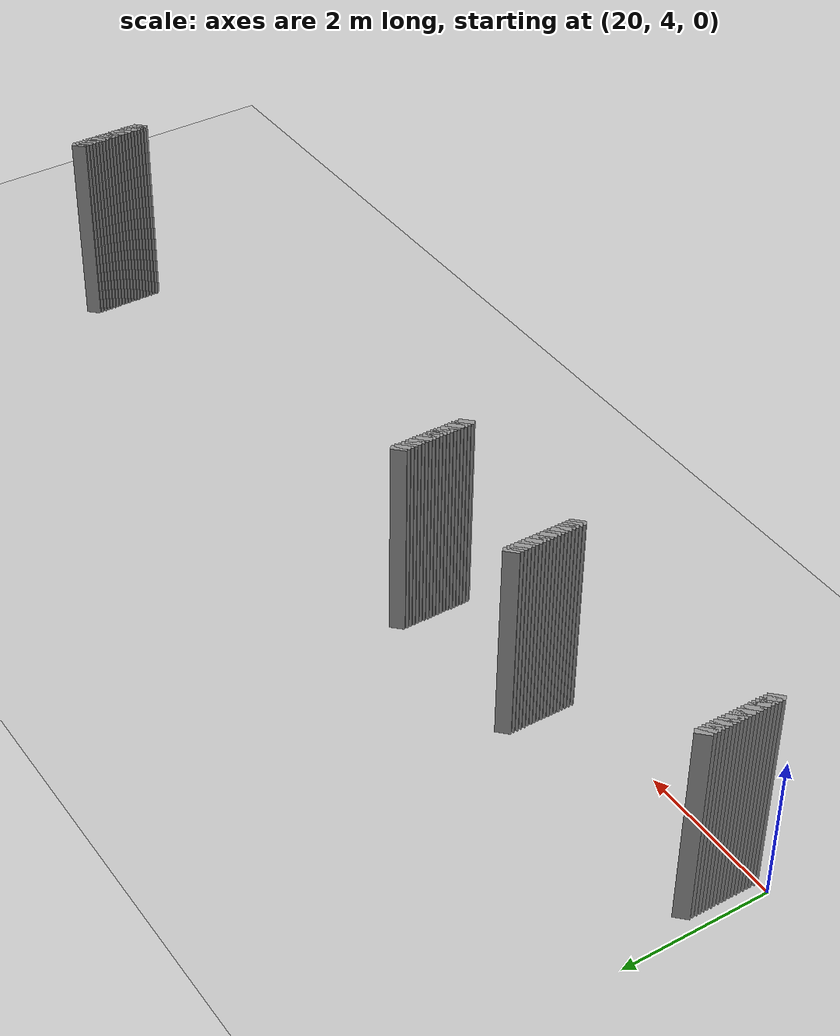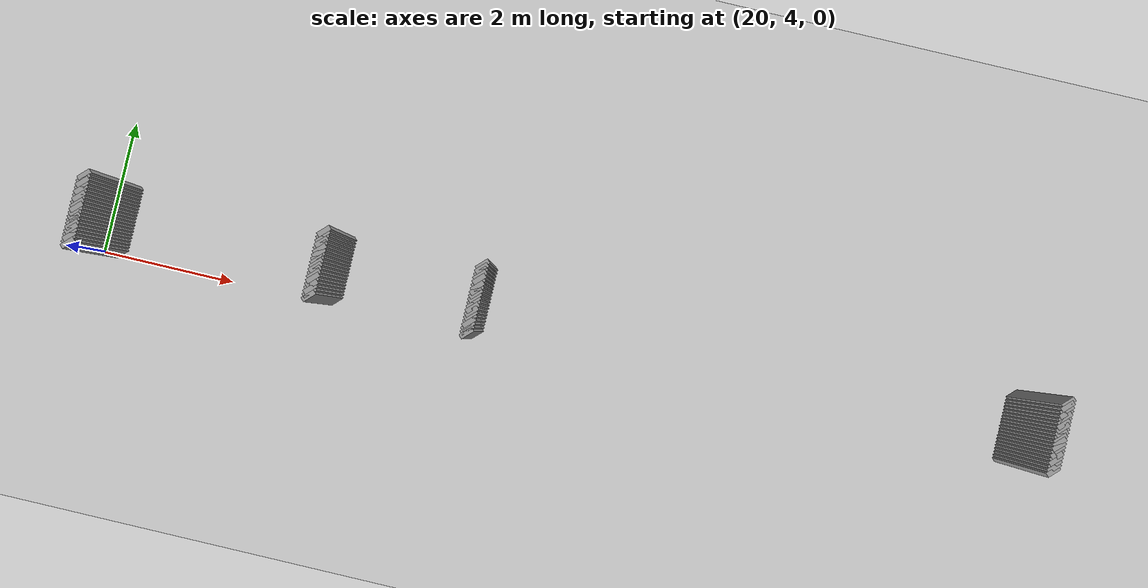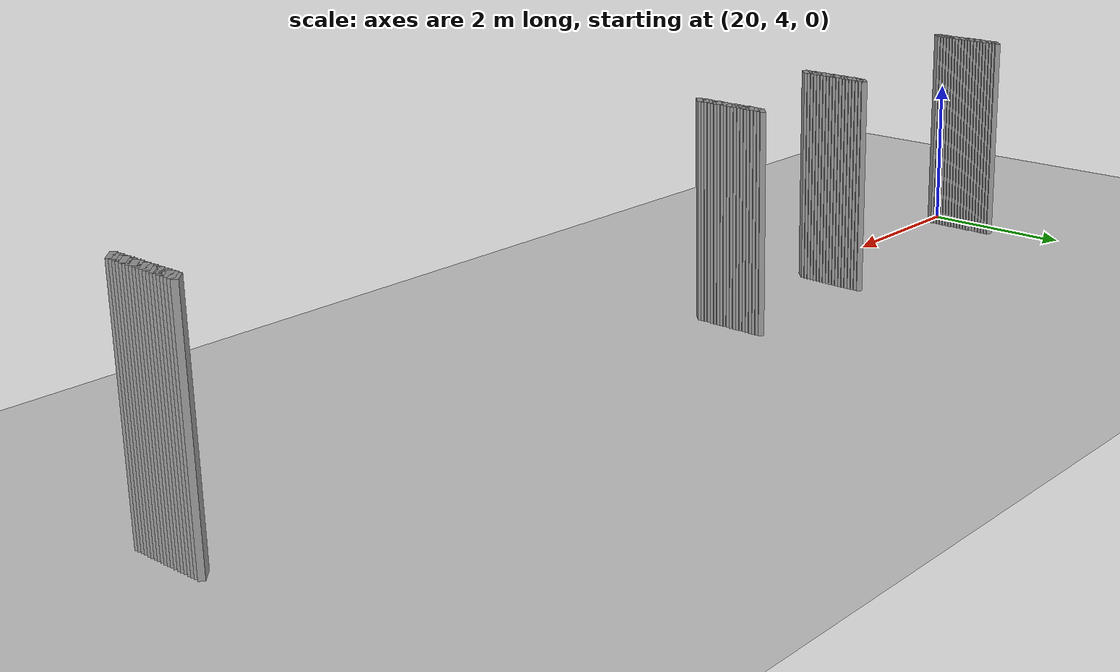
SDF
<sdf version="1.5">
 <world name="default">
  <include><uri>model://ground_plane</uri></include>
  <include><uri>model://sun</uri></include>
  <model name="grey_wall_4806">
   <static>1</static>
   <link name="link">
    <pose>25.8 5.05  1.4 0 0 -0.785398163397</pose>
    <collision name="collision"><geometry><box><size>0.0707106781187 .2  2.8</size></box></geometry></collision>
    <visual name="visual">
     <cast_shadows>0</cast_shadows>
     <geometry><box><size>0.0707106781187 .2  2.8</size></box></geometry>
     <material>
      <script>
       <uri>model://grey_wall/materials/scripts</uri>
       <uri>model://grey_wall/materials/textures</uri>
       <name>vrc/grey_wall</name>
      </script>
     </material>
    </visual>
   </link>
  </model>
  <model name="grey_wall_4807">
   <static>1</static>
   <link name="link">
    <pose>33.95 5.05  1.4 0 0 -0.785398163397</pose>
    <collision name="collision"><geometry><box><size>0.0707106781187 .2  2.8</size></box></geometry></collision>
    <visual name="visual">
     <cast_shadows>0</cast_shadows>
     <geometry><box><size>0.0707106781187 .2  2.8</size></box></geometry>
     <material>
      <script>
       <uri>model://grey_wall/materials/scripts</uri>
       <uri>model://grey_wall/materials/textures</uri>
       <name>vrc/grey_wall</name>
      </script>
     </material>
    </visual>
   </link>
  </model>
  <model name="grey_wall_4808">
   <static>1</static>
   <link name="link">
    <pose>20.25 5.0  1.4 0 0 -0.785398163397</pose>
    <collision name="collision"><geometry><box><size>0.0707106781187 .2  2.8</size></box></geometry></collision>
    <visual name="visual">
     <cast_shadows>0</cast_shadows>
     <geometry><box><size>0.0707106781187 .2  2.8</size></box></geometry>
     <material>
      <script>
       <uri>model://grey_wall/materials/scripts</uri>
       <uri>model://grey_wall/materials/textures</uri>
       <name>vrc/grey_wall</name>
      </script>
     </material>
    </visual>
   </link>
  </model>
  <model name="grey_wall_4809">
   <static>1</static>
   <link name="link">
    <pose>23.6 5.0  1.4 0 0 -0.785398163397</pose>
    <collision name="collision"><geometry><box><size>0.0707106781187 .2  2.8</size></box></geometry></collision>
    <visual name="visual">
     <cast_shadows>0</cast_shadows>
     <geometry><box><size>0.0707106781187 .2  2.8</size></box></geometry>
     <material>
      <script>
       <uri>model://grey_wall/materials/scripts</uri>
       <uri>model://grey_wall/materials/textures</uri>
       <name>vrc/grey_wall</name>
      </script>
     </material>
    </visual>
   </link>
  </model>
  <model name="grey_wall_4810">
   <static>1</static>
   <link name="link">
    <pose>25.8 5.0  1.4 0 0 -0.785398163397</pose>
    <collision name="collision"><geometry><box><size>0.0707106781187 .2  2.8</size></box></geometry></collision>
    <visual name="visual">
     <cast_shadows>0</cast_shadows>
     <geometry><box><size>0.0707106781187 .2  2.8</size></box></geometry>
     <material>
      <script>
       <uri>model://grey_wall/materials/scripts</uri>
       <uri>model://grey_wall/materials/textures</uri>
       <name>vrc/grey_wall</name>
      </script>
     </material>
    </visual>
   </link>
  </model>
  <model name="grey_wall_4811">
   <static>1</static>
   <link name="link">
    <pose>33.95 5.0  1.4 0 0 -0.785398163397</pose>
    <collision name="collision"><geometry><box><size>0.0707106781187 .2  2.8</size></box></geometry></collision>
    <visual name="visual">
     <cast_shadows>0</cast_shadows>
     <geometry><box><size>0.0707106781187 .2  2.8</size></box></geometry>
     <material>
      <script>
       <uri>model://grey_wall/materials/scripts</uri>
       <uri>model://grey_wall/materials/textures</uri>
       <name>vrc/grey_wall</name>
      </script>
     </material>
    </visual>
   </link>
  </model>
  <model name="grey_wall_4812">
   <static>1</static>
   <link name="link">
    <pose>20.25 4.95  1.4 0 0 -0.785398163397</pose>
    <collision name="collision"><geometry><box><size>0.0707106781187 .2  2.8</size></box></geometry></collision>
    <visual name="visual">
     <cast_shadows>0</cast_shadows>
     <geometry><box><size>0.0707106781187 .2  2.8</size></box></geometry>
     <material>
      <script>
       <uri>model://grey_wall/materials/scripts</uri>
       <uri>model://grey_wall/materials/textures</uri>
       <name>vrc/grey_wall</name>
      </script>
     </material>
    </visual>
   </link>
  </model>
  <model name="grey_wall_4813">
   <static>1</static>
   <link name="link">
    <pose>23.6 4.95  1.4 0 0 -0.785398163397</pose>
    <collision name="collision"><geometry><box><size>0.0707106781187 .2  2.8</size></box></geometry></collision>
    <visual name="visual">
     <cast_shadows>0</cast_shadows>
     <geometry><box><size>0.0707106781187 .2  2.8</size></box></geometry>
     <material>
      <script>
       <uri>model://grey_wall/materials/scripts</uri>
       <uri>model://grey_wall/materials/textures</uri>
       <name>vrc/grey_wall</name>
      </script>
     </material>
    </visual>
   </link>
  </model>
  <model name="grey_wall_4814">
   <static>1</static>
   <link name="link">
    <pose>25.8 4.95  1.4 0 0 -0.785398163397</pose>
    <collision name="collision"><geometry><box><size>0.0707106781187 .2  2.8</size></box></geometry></collision>
    <visual name="visual">
     <cast_shadows>0</cast_shadows>
     <geometry><box><size>0.0707106781187 .2  2.8</size></box></geometry>
     <material>
      <script>
       <uri>model://grey_wall/materials/scripts</uri>
       <uri>model://grey_wall/materials/textures</uri>
       <name>vrc/grey_wall</name>
      </script>
     </material>
    </visual>
   </link>
  </model>
  <model name="grey_wall_4815">
   <static>1</static>
   <link name="link">
    <pose>33.95 4.95  1.4 0 0 -0.785398163397</pose>
    <collision name="collision"><geometry><box><size>0.0707106781187 .2  2.8</size></box></geometry></collision>
    <visual name="visual">
     <cast_shadows>0</cast_shadows>
     <geometry><box><size>0.0707106781187 .2  2.8</size></box></geometry>
     <material>
      <script>
       <uri>model://grey_wall/materials/scripts</uri>
       <uri>model://grey_wall/materials/textures</uri>
       <name>vrc/grey_wall</name>
      </script>
     </material>
    </visual>
   </link>
  </model>
  <model name="grey_wall_4816">
   <static>1</static>
   <link name="link">
    <pose>20.25 4.9  1.4 0 0 -0.785398163397</pose>
    <collision name="collision"><geometry><box><size>0.0707106781187 .2  2.8</size></box></geometry></collision>
    <visual name="visual">
     <cast_shadows>0</cast_shadows>
     <geometry><box><size>0.0707106781187 .2  2.8</size></box></geometry>
     <material>
      <script>
       <uri>model://grey_wall/materials/scripts</uri>
       <uri>model://grey_wall/materials/textures</uri>
       <name>vrc/grey_wall</name>
      </script>
     </material>
    </visual>
   </link>
  </model>
  <model name="grey_wall_4817">
   <static>1</static>
   <link name="link">
    <pose>23.6 4.9  1.4 0 0 -0.785398163397</pose>
    <collision name="collision"><geometry><box><size>0.0707106781187 .2  2.8</size></box></geometry></collision>
    <visual name="visual">
     <cast_shadows>0</cast_shadows>
     <geometry><box><size>0.0707106781187 .2  2.8</size></box></geometry>
     <material>
      <script>
       <uri>model://grey_wall/materials/scripts</uri>
       <uri>model://grey_wall/materials/textures</uri>
       <name>vrc/grey_wall</name>
      </script>
     </material>
    </visual>
   </link>
  </model>
  <model name="grey_wall_4818">
   <static>1</static>
   <link name="link">
    <pose>25.8 4.9  1.4 0 0 -0.785398163397</pose>
    <collision name="collision"><geometry><box><size>0.0707106781187 .2  2.8</size></box></geometry></collision>
    <visual name="visual">
     <cast_shadows>0</cast_shadows>
     <geometry><box><size>0.0707106781187 .2  2.8</size></box></geometry>
     <material>
      <script>
       <uri>model://grey_wall/materials/scripts</uri>
       <uri>model://grey_wall/materials/textures</uri>
       <name>vrc/grey_wall</name>
      </script>
     </material>
    </visual>
   </link>
  </model>
  <model name="grey_wall_4819">
   <static>1</static>
   <link name="link">
    <pose>33.95 4.9  1.4 0 0 -0.785398163397</pose>
    <collision name="collision"><geometry><box><size>0.0707106781187 .2  2.8</size></box></geometry></collision>
    <visual name="visual">
     <cast_shadows>0</cast_shadows>
     <geometry><box><size>0.0707106781187 .2  2.8</size></box></geometry>
     <material>
      <script>
       <uri>model://grey_wall/materials/scripts</uri>
       <uri>model://grey_wall/materials/textures</uri>
       <name>vrc/grey_wall</name>
      </script>
     </material>
    </visual>
   </link>
  </model>
  <model name="grey_wall_4820">
   <static>1</static>
   <link name="link">
    <pose>20.25 4.85  1.4 0 0 -0.785398163397</pose>
    <collision name="collision"><geometry><box><size>0.0707106781187 .2  2.8</size></box></geometry></collision>
    <visual name="visual">
     <cast_shadows>0</cast_shadows>
     <geometry><box><size>0.0707106781187 .2  2.8</size></box></geometry>
     <material>
      <script>
       <uri>model://grey_wall/materials/scripts</uri>
       <uri>model://grey_wall/materials/textures</uri>
       <name>vrc/grey_wall</name>
      </script>
     </material>
    </visual>
   </link>
  </model>
  <model name="grey_wall_4821">
   <static>1</static>
   <link name="link">
    <pose>23.6 4.85  1.4 0 0 -0.785398163397</pose>
    <collision name="collision"><geometry><box><size>0.0707106781187 .2  2.8</size></box></geometry></collision>
    <visual name="visual">
     <cast_shadows>0</cast_shadows>
     <geometry><box><size>0.0707106781187 .2  2.8</size></box></geometry>
     <material>
      <script>
       <uri>model://grey_wall/materials/scripts</uri>
       <uri>model://grey_wall/materials/textures</uri>
       <name>vrc/grey_wall</name>
      </script>
     </material>
    </visual>
   </link>
  </model>
  <model name="grey_wall_4822">
   <static>1</static>
   <link name="link">
    <pose>25.8 4.85  1.4 0 0 -0.785398163397</pose>
    <collision name="collision"><geometry><box><size>0.0707106781187 .2  2.8</size></box></geometry></collision>
    <visual name="visual">
     <cast_shadows>0</cast_shadows>
     <geometry><box><size>0.0707106781187 .2  2.8</size></box></geometry>
     <material>
      <script>
       <uri>model://grey_wall/materials/scripts</uri>
       <uri>model://grey_wall/materials/textures</uri>
       <name>vrc/grey_wall</name>
      </script>
     </material>
    </visual>
   </link>
  </model>
  <model name="grey_wall_4823">
   <static>1</static>
   <link name="link">
    <pose>33.95 4.85  1.4 0 0 -0.785398163397</pose>
    <collision name="collision"><geometry><box><size>0.0707106781187 .2  2.8</size></box></geometry></collision>
    <visual name="visual">
     <cast_shadows>0</cast_shadows>
     <geometry><box><size>0.0707106781187 .2  2.8</size></box></geometry>
     <material>
      <script>
       <uri>model://grey_wall/materials/scripts</uri>
       <uri>model://grey_wall/materials/textures</uri>
       <name>vrc/grey_wall</name>
      </script>
     </material>
    </visual>
   </link>
  </model>
  <model name="grey_wall_4824">
   <static>1</static>
   <link name="link">
    <pose>20.25 4.8  1.4 0 0 -0.785398163397</pose>
    <collision name="collision"><geometry><box><size>0.0707106781187 .2  2.8</size></box></geometry></collision>
    <visual name="visual">
     <cast_shadows>0</cast_shadows>
     <geometry><box><size>0.0707106781187 .2  2.8</size></box></geometry>
     <material>
      <script>
       <uri>model://grey_wall/materials/scripts</uri>
       <uri>model://grey_wall/materials/textures</uri>
       <name>vrc/grey_wall</name>
      </script>
     </material>
    </visual>
   </link>
  </model>
  <model name="grey_wall_4825">
   <static>1</static>
   <link name="link">
    <pose>23.6 4.8  1.4 0 0 -0.785398163397</pose>
    <collision name="collision"><geometry><box><size>0.0707106781187 .2  2.8</size></box></geometry></collision>
    <visual name="visual">
     <cast_shadows>0</cast_shadows>
     <geometry><box><size>0.0707106781187 .2  2.8</size></box></geometry>
     <material>
      <script>
       <uri>model://grey_wall/materials/scripts</uri>
       <uri>model://grey_wall/materials/textures</uri>
       <name>vrc/grey_wall</name>
      </script>
     </material>
    </visual>
   </link>
  </model>
  <model name="grey_wall_4826">
   <static>1</static>
   <link name="link">
    <pose>25.8 4.8  1.4 0 0 -0.785398163397</pose>
    <collision name="collision"><geometry><box><size>0.0707106781187 .2  2.8</size></box></geometry></collision>
    <visual name="visual">
     <cast_shadows>0</cast_shadows>
     <geometry><box><size>0.0707106781187 .2  2.8</size></box></geometry>
     <material>
      <script>
       <uri>model://grey_wall/materials/scripts</uri>
       <uri>model://grey_wall/materials/textures</uri>
       <name>vrc/grey_wall</name>
      </script>
     </material>
    </visual>
   </link>
  </model>
  <model name="grey_wall_4827">
   <static>1</static>
   <link name="link">
    <pose>33.95 4.8  1.4 0 0 -0.785398163397</pose>
    <collision name="collision"><geometry><box><size>0.0707106781187 .2  2.8</size></box></geometry></collision>
    <visual name="visual">
     <cast_shadows>0</cast_shadows>
     <geometry><box><size>0.0707106781187 .2  2.8</size></box></geometry>
     <material>
      <script>
       <uri>model://grey_wall/materials/scripts</uri>
       <uri>model://grey_wall/materials/textures</uri>
       <name>vrc/grey_wall</name>
      </script>
     </material>
    </visual>
   </link>
  </model>
  <model name="grey_wall_4828">
   <static>1</static>
   <link name="link">
    <pose>20.25 4.75  1.4 0 0 -0.785398163397</pose>
    <collision name="collision"><geometry><box><size>0.0707106781187 .2  2.8</size></box></geometry></collision>
    <visual name="visual">
     <cast_shadows>0</cast_shadows>
     <geometry><box><size>0.0707106781187 .2  2.8</size></box></geometry>
     <material>
      <script>
       <uri>model://grey_wall/materials/scripts</uri>
       <uri>model://grey_wall/materials/textures</uri>
       <name>vrc/grey_wall</name>
      </script>
     </material>
    </visual>
   </link>
  </model>
  <model name="grey_wall_4829">
   <static>1</static>
   <link name="link">
    <pose>23.6 4.75  1.4 0 0 -0.785398163397</pose>
    <collision name="collision"><geometry><box><size>0.0707106781187 .2  2.8</size></box></geometry></collision>
    <visual name="visual">
     <cast_shadows>0</cast_shadows>
     <geometry><box><size>0.0707106781187 .2  2.8</size></box></geometry>
     <material>
      <script>
       <uri>model://grey_wall/materials/scripts</uri>
       <uri>model://grey_wall/materials/textures</uri>
       <name>vrc/grey_wall</name>
      </script>
     </material>
    </visual>
   </link>
  </model>
  <model name="grey_wall_4830">
   <static>1</static>
   <link name="link">
    <pose>25.8 4.75  1.4 0 0 -0.785398163397</pose>
    <collision name="collision"><geometry><box><size>0.0707106781187 .2  2.8</size></box></geometry></collision>
    <visual name="visual">
     <cast_shadows>0</cast_shadows>
     <geometry><box><size>0.0707106781187 .2  2.8</size></box></geometry>
     <material>
      <script>
       <uri>model://grey_wall/materials/scripts</uri>
       <uri>model://grey_wall/materials/textures</uri>
       <name>vrc/grey_wall</name>
      </script>
     </material>
    </visual>
   </link>
  </model>
  <model name="grey_wall_4831">
   <static>1</static>
   <link name="link">
    <pose>33.95 4.75  1.4 0 0 -0.785398163397</pose>
    <collision name="collision"><geometry><box><size>0.0707106781187 .2  2.8</size></box></geometry></collision>
    <visual name="visual">
     <cast_shadows>0</cast_shadows>
     <geometry><box><size>0.0707106781187 .2  2.8</size></box></geometry>
     <material>
      <script>
       <uri>model://grey_wall/materials/scripts</uri>
       <uri>model://grey_wall/materials/textures</uri>
       <name>vrc/grey_wall</name>
      </script>
     </material>
    </visual>
   </link>
  </model>
  <model name="grey_wall_4832">
   <static>1</static>
   <link name="link">
    <pose>20.25 4.7  1.4 0 0 -0.785398163397</pose>
    <collision name="collision"><geometry><box><size>0.0707106781187 .2  2.8</size></box></geometry></collision>
    <visual name="visual">
     <cast_shadows>0</cast_shadows>
     <geometry><box><size>0.0707106781187 .2  2.8</size></box></geometry>
     <material>
      <script>
       <uri>model://grey_wall/materials/scripts</uri>
       <uri>model://grey_wall/materials/textures</uri>
       <name>vrc/grey_wall</name>
      </script>
     </material>
    </visual>
   </link>
  </model>
  <model name="grey_wall_4833">
   <static>1</static>
   <link name="link">
    <pose>23.6 4.7  1.4 0 0 -0.785398163397</pose>
    <collision name="collision"><geometry><box><size>0.0707106781187 .2  2.8</size></box></geometry></collision>
    <visual name="visual">
     <cast_shadows>0</cast_shadows>
     <geometry><box><size>0.0707106781187 .2  2.8</size></box></geometry>
     <material>
      <script>
       <uri>model://grey_wall/materials/scripts</uri>
       <uri>model://grey_wall/materials/textures</uri>
       <name>vrc/grey_wall</name>
      </script>
     </material>
    </visual>
   </link>
  </model>
  <model name="grey_wall_4834">
   <static>1</static>
   <link name="link">
    <pose>25.8 4.7  1.4 0 0 -0.785398163397</pose>
    <collision name="collision"><geometry><box><size>0.0707106781187 .2  2.8</size></box></geometry></collision>
    <visual name="visual">
     <cast_shadows>0</cast_shadows>
     <geometry><box><size>0.0707106781187 .2  2.8</size></box></geometry>
     <material>
      <script>
       <uri>model://grey_wall/materials/scripts</uri>
       <uri>model://grey_wall/materials/textures</uri>
       <name>vrc/grey_wall</name>
      </script>
     </material>
    </visual>
   </link>
  </model>
  <model name="grey_wall_4835">
   <static>1</static>
   <link name="link">
    <pose>33.95 4.7  1.4 0 0 -0.785398163397</pose>
    <collision name="collision"><geometry><box><size>0.0707106781187 .2  2.8</size></box></geometry></collision>
    <visual name="visual">
     <cast_shadows>0</cast_shadows>
     <geometry><box><size>0.0707106781187 .2  2.8</size></box></geometry>
     <material>
      <script>
       <uri>model://grey_wall/materials/scripts</uri>
       <uri>model://grey_wall/materials/textures</uri>
       <name>vrc/grey_wall</name>
      </script>
     </material>
    </visual>
   </link>
  </model>
  <model name="grey_wall_4836">
   <static>1</static>
   <link name="link">
    <pose>20.25 4.65  1.4 0 0 -0.785398163397</pose>
    <collision name="collision"><geometry><box><size>0.0707106781187 .2  2.8</size></box></geometry></collision>
    <visual name="visual">
     <cast_shadows>0</cast_shadows>
     <geometry><box><size>0.0707106781187 .2  2.8</size></box></geometry>
     <material>
      <script>
       <uri>model://grey_wall/materials/scripts</uri>
       <uri>model://grey_wall/materials/textures</uri>
       <name>vrc/grey_wall</name>
      </script>
     </material>
    </visual>
   </link>
  </model>
  <model name="grey_wall_4837">
   <static>1</static>
   <link name="link">
    <pose>23.6 4.65  1.4 0 0 -0.785398163397</pose>
    <collision name="collision"><geometry><box><size>0.0707106781187 .2  2.8</size></box></geometry></collision>
    <visual name="visual">
     <cast_shadows>0</cast_shadows>
     <geometry><box><size>0.0707106781187 .2  2.8</size></box></geometry>
     <material>
      <script>
       <uri>model://grey_wall/materials/scripts</uri>
       <uri>model://grey_wall/materials/textures</uri>
       <name>vrc/grey_wall</name>
      </script>
     </material>
    </visual>
   </link>
  </model>
  <model name="grey_wall_4838">
   <static>1</static>
   <link name="link">
    <pose>25.8 4.65  1.4 0 0 -0.785398163397</pose>
    <collision name="collision"><geometry><box><size>0.0707106781187 .2  2.8</size></box></geometry></collision>
    <visual name="visual">
     <cast_shadows>0</cast_shadows>
     <geometry><box><size>0.0707106781187 .2  2.8</size></box></geometry>
     <material>
      <script>
       <uri>model://grey_wall/materials/scripts</uri>
       <uri>model://grey_wall/materials/textures</uri>
       <name>vrc/grey_wall</name>
      </script>
     </material>
    </visual>
   </link>
  </model>
  <model name="grey_wall_4839">
   <static>1</static>
   <link name="link">
    <pose>33.95 4.65  1.4 0 0 -0.785398163397</pose>
    <collision name="collision"><geometry><box><size>0.0707106781187 .2  2.8</size></box></geometry></collision>
    <visual name="visual">
     <cast_shadows>0</cast_shadows>
     <geometry><box><size>0.0707106781187 .2  2.8</size></box></geometry>
     <material>
      <script>
       <uri>model://grey_wall/materials/scripts</uri>
       <uri>model://grey_wall/materials/textures</uri>
       <name>vrc/grey_wall</name>
      </script>
     </material>
    </visual>
   </link>
  </model>
  <model name="grey_wall_4840">
   <static>1</static>
   <link name="link">
    <pose>20.25 4.6  1.4 0 0 -0.785398163397</pose>
    <collision name="collision"><geometry><box><size>0.0707106781187 .2  2.8</size></box></geometry></collision>
    <visual name="visual">
     <cast_shadows>0</cast_shadows>
     <geometry><box><size>0.0707106781187 .2  2.8</size></box></geometry>
     <material>
      <script>
       <uri>model://grey_wall/materials/scripts</uri>
       <uri>model://grey_wall/materials/textures</uri>
       <name>vrc/grey_wall</name>
      </script>
     </material>
    </visual>
   </link>
  </model>
  <model name="grey_wall_4841">
   <static>1</static>
   <link name="link">
    <pose>23.6 4.6  1.4 0 0 -0.785398163397</pose>
    <collision name="collision"><geometry><box><size>0.0707106781187 .2  2.8</size></box></geometry></collision>
    <visual name="visual">
     <cast_shadows>0</cast_shadows>
     <geometry><box><size>0.0707106781187 .2  2.8</size></box></geometry>
     <material>
      <script>
       <uri>model://grey_wall/materials/scripts</uri>
       <uri>model://grey_wall/materials/textures</uri>
       <name>vrc/grey_wall</name>
      </script>
     </material>
    </visual>
   </link>
  </model>
  <model name="grey_wall_4842">
   <static>1</static>
   <link name="link">
    <pose>25.8 4.6  1.4 0 0 -0.785398163397</pose>
    <collision name="collision"><geometry><box><size>0.0707106781187 .2  2.8</size></box></geometry></collision>
    <visual name="visual">
     <cast_shadows>0</cast_shadows>
     <geometry><box><size>0.0707106781187 .2  2.8</size></box></geometry>
     <material>
      <script>
       <uri>model://grey_wall/materials/scripts</uri>
       <uri>model://grey_wall/materials/textures</uri>
       <name>vrc/grey_wall</name>
      </script>
     </material>
    </visual>
   </link>
  </model>
  <model name="grey_wall_4843">
   <static>1</static>
   <link name="link">
    <pose>33.95 4.6  1.4 0 0 -0.785398163397</pose>
    <collision name="collision"><geometry><box><size>0.0707106781187 .2  2.8</size></box></geometry></collision>
    <visual name="visual">
     <cast_shadows>0</cast_shadows>
     <geometry><box><size>0.0707106781187 .2  2.8</size></box></geometry>
     <material>
      <script>
       <uri>model://grey_wall/materials/scripts</uri>
       <uri>model://grey_wall/materials/textures</uri>
       <name>vrc/grey_wall</name>
      </script>
     </material>
    </visual>
   </link>
  </model>
  <model name="grey_wall_4844">
   <static>1</static>
   <link name="link">
    <pose>20.25 4.55  1.4 0 0 -0.785398163397</pose>
    <collision name="collision"><geometry><box><size>0.0707106781187 .2  2.8</size></box></geometry></collision>
    <visual name="visual">
     <cast_shadows>0</cast_shadows>
     <geometry><box><size>0.0707106781187 .2  2.8</size></box></geometry>
     <material>
      <script>
       <uri>model://grey_wall/materials/scripts</uri>
       <uri>model://grey_wall/materials/textures</uri>
       <name>vrc/grey_wall</name>
      </script>
     </material>
    </visual>
   </link>
  </model>
  <model name="grey_wall_4845">
   <static>1</static>
   <link name="link">
    <pose>23.6 4.55  1.4 0 0 -0.785398163397</pose>
    <collision name="collision"><geometry><box><size>0.0707106781187 .2  2.8</size></box></geometry></collision>
    <visual name="visual">
     <cast_shadows>0</cast_shadows>
     <geometry><box><size>0.0707106781187 .2  2.8</size></box></geometry>
     <material>
      <script>
       <uri>model://grey_wall/materials/scripts</uri>
       <uri>model://grey_wall/materials/textures</uri>
       <name>vrc/grey_wall</name>
      </script>
     </material>
    </visual>
   </link>
  </model>
  <model name="grey_wall_4846">
   <static>1</static>
   <link name="link">
    <pose>25.8 4.55  1.4 0 0 -0.785398163397</pose>
    <collision name="collision"><geometry><box><size>0.0707106781187 .2  2.8</size></box></geometry></collision>
    <visual name="visual">
     <cast_shadows>0</cast_shadows>
     <geometry><box><size>0.0707106781187 .2  2.8</size></box></geometry>
     <material>
      <script>
       <uri>model://grey_wall/materials/scripts</uri>
       <uri>model://grey_wall/materials/textures</uri>
       <name>vrc/grey_wall</name>
      </script>
     </material>
    </visual>
   </link>
  </model>
  <model name="grey_wall_4847">
   <static>1</static>
   <link name="link">
    <pose>33.95 4.55  1.4 0 0 -0.785398163397</pose>
    <collision name="collision"><geometry><box><size>0.0707106781187 .2  2.8</size></box></geometry></collision>
    <visual name="visual">
     <cast_shadows>0</cast_shadows>
     <geometry><box><size>0.0707106781187 .2  2.8</size></box></geometry>
     <material>
      <script>
       <uri>model://grey_wall/materials/scripts</uri>
       <uri>model://grey_wall/materials/textures</uri>
       <name>vrc/grey_wall</name>
      </script>
     </material>
    </visual>
   </link>
  </model>
  <model name="grey_wall_4848">
   <static>1</static>
   <link name="link">
    <pose>20.25 4.5  1.4 0 0 -0.785398163397</pose>
    <collision name="collision"><geometry><box><size>0.0707106781187 .2  2.8</size></box></geometry></collision>
    <visual name="visual">
     <cast_shadows>0</cast_shadows>
     <geometry><box><size>0.0707106781187 .2  2.8</size></box></geometry>
     <material>
      <script>
       <uri>model://grey_wall/materials/scripts</uri>
       <uri>model://grey_wall/materials/textures</uri>
       <name>vrc/grey_wall</name>
      </script>
     </material>
    </visual>
   </link>
  </model>
  <model name="grey_wall_4849">
   <static>1</static>
   <link name="link">
    <pose>23.6 4.5  1.4 0 0 -0.785398163397</pose>
    <collision name="collision"><geometry><box><size>0.0707106781187 .2  2.8</size></box></geometry></collision>
    <visual name="visual">
     <cast_shadows>0</cast_shadows>
     <geometry><box><size>0.0707106781187 .2  2.8</size></box></geometry>
     <material>
      <script>
       <uri>model://grey_wall/materials/scripts</uri>
       <uri>model://grey_wall/materials/textures</uri>
       <name>vrc/grey_wall</name>
      </script>
     </material>
    </visual>
   </link>
  </model>
  <model name="grey_wall_4850">
   <static>1</static>
   <link name="link">
    <pose>25.8 4.5  1.4 0 0 -0.785398163397</pose>
    <collision name="collision"><geometry><box><size>0.0707106781187 .2  2.8</size></box></geometry></collision>
    <visual name="visual">
     <cast_shadows>0</cast_shadows>
     <geometry><box><size>0.0707106781187 .2  2.8</size></box></geometry>
     <material>
      <script>
       <uri>model://grey_wall/materials/scripts</uri>
       <uri>model://grey_wall/materials/textures</uri>
       <name>vrc/grey_wall</name>
      </script>
     </material>
    </visual>
   </link>
  </model>
  <model name="grey_wall_4851">
   <static>1</static>
   <link name="link">
    <pose>33.95 4.5  1.4 0 0 -0.785398163397</pose>
    <collision name="collision"><geometry><box><size>0.0707106781187 .2  2.8</size></box></geometry></collision>
    <visual name="visual">
     <cast_shadows>0</cast_shadows>
     <geometry><box><size>0.0707106781187 .2  2.8</size></box></geometry>
     <material>
      <script>
       <uri>model://grey_wall/materials/scripts</uri>
       <uri>model://grey_wall/materials/textures</uri>
       <name>vrc/grey_wall</name>
      </script>
     </material>
    </visual>
   </link>
  </model>
  <model name="grey_wall_4852">
   <static>1</static>
   <link name="link">
    <pose>20.25 4.45  1.4 0 0 -0.785398163397</pose>
    <collision name="collision"><geometry><box><size>0.0707106781187 .2  2.8</size></box></geometry></collision>
    <visual name="visual">
     <cast_shadows>0</cast_shadows>
     <geometry><box><size>0.0707106781187 .2  2.8</size></box></geometry>
     <material>
      <script>
       <uri>model://grey_wall/materials/scripts</uri>
       <uri>model://grey_wall/materials/textures</uri>
       <name>vrc/grey_wall</name>
      </script>
     </material>
    </visual>
   </link>
  </model>
  <model name="grey_wall_4853">
   <static>1</static>
   <link name="link">
    <pose>23.6 4.45  1.4 0 0 -0.785398163397</pose>
    <collision name="collision"><geometry><box><size>0.0707106781187 .2  2.8</size></box></geometry></collision>
    <visual name="visual">
     <cast_shadows>0</cast_shadows>
     <geometry><box><size>0.0707106781187 .2  2.8</size></box></geometry>
     <material>
      <script>
       <uri>model://grey_wall/materials/scripts</uri>
       <uri>model://grey_wall/materials/textures</uri>
       <name>vrc/grey_wall</name>
      </script>
     </material>
    </visual>
   </link>
  </model>
  <model name="grey_wall_4854">
   <static>1</static>
   <link name="link">
    <pose>25.8 4.45  1.4 0 0 -0.785398163397</pose>
    <collision name="collision"><geometry><box><size>0.0707106781187 .2  2.8</size></box></geometry></collision>
    <visual name="visual">
     <cast_shadows>0</cast_shadows>
     <geometry><box><size>0.0707106781187 .2  2.8</size></box></geometry>
     <material>
      <script>
       <uri>model://grey_wall/materials/scripts</uri>
       <uri>model://grey_wall/materials/textures</uri>
       <name>vrc/grey_wall</name>
      </script>
     </material>
    </visual>
   </link>
  </model>
  <model name="grey_wall_4855">
   <static>1</static>
   <link name="link">
    <pose>33.95 4.45  1.4 0 0 -0.785398163397</pose>
    <collision name="collision"><geometry><box><size>0.0707106781187 .2  2.8</size></box></geometry></collision>
    <visual name="visual">
     <cast_shadows>0</cast_shadows>
     <geometry><box><size>0.0707106781187 .2  2.8</size></box></geometry>
     <material>
      <script>
       <uri>model://grey_wall/materials/scripts</uri>
       <uri>model://grey_wall/materials/textures</uri>
       <name>vrc/grey_wall</name>
      </script>
     </material>
    </visual>
   </link>
  </model>
  <model name="grey_wall_4856">
   <static>1</static>
   <link name="link">
    <pose>20.25 4.4  1.4 0 0 -0.785398163397</pose>
    <collision name="collision"><geometry><box><size>0.0707106781187 .2  2.8</size></box></geometry></collision>
    <visual name="visual">
     <cast_shadows>0</cast_shadows>
     <geometry><box><size>0.0707106781187 .2  2.8</size></box></geometry>
     <material>
      <script>
       <uri>model://grey_wall/materials/scripts</uri>
       <uri>model://grey_wall/materials/textures</uri>
       <name>vrc/grey_wall</name>
      </script>
     </material>
    </visual>
   </link>
  </model>
  <model name="grey_wall_4857">
   <static>1</static>
   <link name="link">
    <pose>23.6 4.4  1.4 0 0 -0.785398163397</pose>
    <collision name="collision"><geometry><box><size>0.0707106781187 .2  2.8</size></box></geometry></collision>
    <visual name="visual">
     <cast_shadows>0</cast_shadows>
     <geometry><box><size>0.0707106781187 .2  2.8</size></box></geometry>
     <material>
      <script>
       <uri>model://grey_wall/materials/scripts</uri>
       <uri>model://grey_wall/materials/textures</uri>
       <name>vrc/grey_wall</name>
      </script>
     </material>
    </visual>
   </link>
  </model>
  <model name="grey_wall_4858">
   <static>1</static>
   <link name="link">
    <pose>25.8 4.4  1.4 0 0 -0.785398163397</pose>
    <collision name="collision"><geometry><box><size>0.0707106781187 .2  2.8</size></box></geometry></collision>
    <visual name="visual">
     <cast_shadows>0</cast_shadows>
     <geometry><box><size>0.0707106781187 .2  2.8</size></box></geometry>
     <material>
      <script>
       <uri>model://grey_wall/materials/scripts</uri>
       <uri>model://grey_wall/materials/textures</uri>
       <name>vrc/grey_wall</name>
      </script>
     </material>
    </visual>
   </link>
  </model>
  <model name="grey_wall_4859">
   <static>1</static>
   <link name="link">
    <pose>33.95 4.4  1.4 0 0 -0.785398163397</pose>
    <collision name="collision"><geometry><box><size>0.0707106781187 .2  2.8</size></box></geometry></collision>
    <visual name="visual">
     <cast_shadows>0</cast_shadows>
     <geometry><box><size>0.0707106781187 .2  2.8</size></box></geometry>
     <material>
      <script>
       <uri>model://grey_wall/materials/scripts</uri>
       <uri>model://grey_wall/materials/textures</uri>
       <name>vrc/grey_wall</name>
      </script>
     </material>
    </visual>
   </link>
  </model>
  <model name="grey_wall_4860">
   <static>1</static>
   <link name="link">
    <pose>20.25 4.35  1.4 0 0 -0.785398163397</pose>
    <collision name="collision"><geometry><box><size>0.0707106781187 .2  2.8</size></box></geometry></collision>
    <visual name="visual">
     <cast_shadows>0</cast_shadows>
     <geometry><box><size>0.0707106781187 .2  2.8</size></box></geometry>
     <material>
      <script>
       <uri>model://grey_wall/materials/scripts</uri>
       <uri>model://grey_wall/materials/textures</uri>
       <name>vrc/grey_wall</name>
      </script>
     </material>
    </visual>
   </link>
  </model>
  <model name="grey_wall_4861">
   <static>1</static>
   <link name="link">
    <pose>23.6 4.35  1.4 0 0 -0.785398163397</pose>
    <collision name="collision"><geometry><box><size>0.0707106781187 .2  2.8</size></box></geometry></collision>
    <visual name="visual">
     <cast_shadows>0</cast_shadows>
     <geometry><box><size>0.0707106781187 .2  2.8</size></box></geometry>
     <material>
      <script>
       <uri>model://grey_wall/materials/scripts</uri>
       <uri>model://grey_wall/materials/textures</uri>
       <name>vrc/grey_wall</name>
      </script>
     </material>
    </visual>
   </link>
  </model>
  <model name="grey_wall_4862">
   <static>1</static>
   <link name="link">
    <pose>25.8 4.35  1.4 0 0 -0.785398163397</pose>
    <collision name="collision"><geometry><box><size>0.0707106781187 .2  2.8</size></box></geometry></collision>
    <visual name="visual">
     <cast_shadows>0</cast_shadows>
     <geometry><box><size>0.0707106781187 .2  2.8</size></box></geometry>
     <material>
      <script>
       <uri>model://grey_wall/materials/scripts</uri>
       <uri>model://grey_wall/materials/textures</uri>
       <name>vrc/grey_wall</name>
      </script>
     </material>
    </visual>
   </link>
  </model>
  <model name="grey_wall_4863">
   <static>1</static>
   <link name="link">
    <pose>33.95 4.35  1.4 0 0 -0.785398163397</pose>
    <collision name="collision"><geometry><box><size>0.0707106781187 .2  2.8</size></box></geometry></collision>
    <visual name="visual">
     <cast_shadows>0</cast_shadows>
     <geometry><box><size>0.0707106781187 .2  2.8</size></box></geometry>
     <material>
      <script>
       <uri>model://grey_wall/materials/scripts</uri>
       <uri>model://grey_wall/materials/textures</uri>
       <name>vrc/grey_wall</name>
      </script>
     </material>
    </visual>
   </link>
  </model>
  <model name="grey_wall_4864">
   <static>1</static>
   <link name="link">
    <pose>20.25 4.3  1.4 0 0 -0.785398163397</pose>
    <collision name="collision"><geometry><box><size>0.0707106781187 .2  2.8</size></box></geometry></collision>
    <visual name="visual">
     <cast_shadows>0</cast_shadows>
     <geometry><box><size>0.0707106781187 .2  2.8</size></box></geometry>
     <material>
      <script>
       <uri>model://grey_wall/materials/scripts</uri>
       <uri>model://grey_wall/materials/textures</uri>
       <name>vrc/grey_wall</name>
      </script>
     </material>
    </visual>
   </link>
  </model>
  <model name="grey_wall_4865">
   <static>1</static>
   <link name="link">
    <pose>23.6 4.3  1.4 0 0 -0.785398163397</pose>
    <collision name="collision"><geometry><box><size>0.0707106781187 .2  2.8</size></box></geometry></collision>
    <visual name="visual">
     <cast_shadows>0</cast_shadows>
     <geometry><box><size>0.0707106781187 .2  2.8</size></box></geometry>
     <material>
      <script>
       <uri>model://grey_wall/materials/scripts</uri>
       <uri>model://grey_wall/materials/textures</uri>
       <name>vrc/grey_wall</name>
      </script>
     </material>
    </visual>
   </link>
  </model>
  <model name="grey_wall_4866">
   <static>1</static>
   <link name="link">
    <pose>25.8 4.3  1.4 0 0 -0.785398163397</pose>
    <collision name="collision"><geometry><box><size>0.0707106781187 .2  2.8</size></box></geometry></collision>
    <visual name="visual">
     <cast_shadows>0</cast_shadows>
     <geometry><box><size>0.0707106781187 .2  2.8</size></box></geometry>
     <material>
      <script>
       <uri>model://grey_wall/materials/scripts</uri>
       <uri>model://grey_wall/materials/textures</uri>
       <name>vrc/grey_wall</name>
      </script>
     </material>
    </visual>
   </link>
  </model>
  <model name="grey_wall_4867">
   <static>1</static>
   <link name="link">
    <pose>33.95 4.3  1.4 0 0 -0.785398163397</pose>
    <collision name="collision"><geometry><box><size>0.0707106781187 .2  2.8</size></box></geometry></collision>
    <visual name="visual">
     <cast_shadows>0</cast_shadows>
     <geometry><box><size>0.0707106781187 .2  2.8</size></box></geometry>
     <material>
      <script>
       <uri>model://grey_wall/materials/scripts</uri>
       <uri>model://grey_wall/materials/textures</uri>
       <name>vrc/grey_wall</name>
      </script>
     </material>
    </visual>
   </link>
  </model>
  <model name="grey_wall_4868">
   <static>1</static>
   <link name="link">
    <pose>20.25 4.25  1.4 0 0 -0.785398163397</pose>
    <collision name="collision"><geometry><box><size>0.0707106781187 .2  2.8</size></box></geometry></collision>
    <visual name="visual">
     <cast_shadows>0</cast_shadows>
     <geometry><box><size>0.0707106781187 .2  2.8</size></box></geometry>
     <material>
      <script>
       <uri>model://grey_wall/materials/scripts</uri>
       <uri>model://grey_wall/materials/textures</uri>
       <name>vrc/grey_wall</name>
      </script>
     </material>
    </visual>
   </link>
  </model>
  <model name="grey_wall_4869">
   <static>1</static>
   <link name="link">
    <pose>23.6 4.25  1.4 0 0 -0.785398163397</pose>
    <collision name="collision"><geometry><box><size>0.0707106781187 .2  2.8</size></box></geometry></collision>
    <visual name="visual">
     <cast_shadows>0</cast_shadows>
     <geometry><box><size>0.0707106781187 .2  2.8</size></box></geometry>
     <material>
      <script>
       <uri>model://grey_wall/materials/scripts</uri>
       <uri>model://grey_wall/materials/textures</uri>
       <name>vrc/grey_wall</name>
      </script>
     </material>
    </visual>
   </link>
  </model>
  <model name="grey_wall_4870">
   <static>1</static>
   <link name="link">
    <pose>25.8 4.25  1.4 0 0 -0.785398163397</pose>
    <collision name="collision"><geometry><box><size>0.0707106781187 .2  2.8</size></box></geometry></collision>
    <visual name="visual">
     <cast_shadows>0</cast_shadows>
     <geometry><box><size>0.0707106781187 .2  2.8</size></box></geometry>
     <material>
      <script>
       <uri>model://grey_wall/materials/scripts</uri>
       <uri>model://grey_wall/materials/textures</uri>
       <name>vrc/grey_wall</name>
      </script>
     </material>
    </visual>
   </link>
  </model>
  <model name="grey_wall_4871">
   <static>1</static>
   <link name="link">
    <pose>33.95 4.25  1.4 0 0 -0.785398163397</pose>
    <collision name="collision"><geometry><box><size>0.0707106781187 .2  2.8</size></box></geometry></collision>
    <visual name="visual">
     <cast_shadows>0</cast_shadows>
     <geometry><box><size>0.0707106781187 .2  2.8</size></box></geometry>
     <material>
      <script>
       <uri>model://grey_wall/materials/scripts</uri>
       <uri>model://grey_wall/materials/textures</uri>
       <name>vrc/grey_wall</name>
      </script>
     </material>
    </visual>
   </link>
  </model>
  <model name="grey_wall_4872">
   <static>1</static>
   <link name="link">
    <pose>20.25 4.2  1.4 0 0 -0.785398163397</pose>
    <collision name="collision"><geometry><box><size>0.0707106781187 .2  2.8</size></box></geometry></collision>
    <visual name="visual">
     <cast_shadows>0</cast_shadows>
     <geometry><box><size>0.0707106781187 .2  2.8</size></box></geometry>
     <material>
      <script>
       <uri>model://grey_wall/materials/scripts</uri>
       <uri>model://grey_wall/materials/textures</uri>
       <name>vrc/grey_wall</name>
      </script>
     </material>
    </visual>
   </link>
  </model>
  <model name="grey_wall_4873">
   <static>1</static>
   <link name="link">
    <pose>23.6 4.2  1.4 0 0 -0.785398163397</pose>
    <collision name="collision"><geometry><box><size>0.0707106781187 .2  2.8</size></box></geometry></collision>
    <visual name="visual">
     <cast_shadows>0</cast_shadows>
     <geometry><box><size>0.0707106781187 .2  2.8</size></box></geometry>
     <material>
      <script>
       <uri>model://grey_wall/materials/scripts</uri>
       <uri>model://grey_wall/materials/textures</uri>
       <name>vrc/grey_wall</name>
      </script>
     </material>
    </visual>
   </link>
  </model>
  <model name="grey_wall_4874">
   <static>1</static>
   <link name="link">
    <pose>25.8 4.2  1.4 0 0 -0.785398163397</pose>
    <collision name="collision"><geometry><box><size>0.0707106781187 .2  2.8</size></box></geometry></collision>
    <visual name="visual">
     <cast_shadows>0</cast_shadows>
     <geometry><box><size>0.0707106781187 .2  2.8</size></box></geometry>
     <material>
      <script>
       <uri>model://grey_wall/materials/scripts</uri>
       <uri>model://grey_wall/materials/textures</uri>
       <name>vrc/grey_wall</name>
      </script>
     </material>
    </visual>
   </link>
  </model>
  <model name="grey_wall_4875">
   <static>1</static>
   <link name="link">
    <pose>33.95 4.2  1.4 0 0 -0.785398163397</pose>
    <collision name="collision"><geometry><box><size>0.0707106781187 .2  2.8</size></box></geometry></collision>
    <visual name="visual">
     <cast_shadows>0</cast_shadows>
     <geometry><box><size>0.0707106781187 .2  2.8</size></box></geometry>
     <material>
      <script>
       <uri>model://grey_wall/materials/scripts</uri>
       <uri>model://grey_wall/materials/textures</uri>
       <name>vrc/grey_wall</name>
      </script>
     </material>
    </visual>
   </link>
  </model>
  <model name="grey_wall_4876">
   <static>1</static>
   <link name="link">
    <pose>20.25 4.15  1.4 0 0 -0.785398163397</pose>
    <collision name="collision"><geometry><box><size>0.0707106781187 .2  2.8</size></box></geometry></collision>
    <visual name="visual">
     <cast_shadows>0</cast_shadows>
     <geometry><box><size>0.0707106781187 .2  2.8</size></box></geometry>
     <material>
      <script>
       <uri>model://grey_wall/materials/scripts</uri>
       <uri>model://grey_wall/materials/textures</uri>
       <name>vrc/grey_wall</name>
      </script>
     </material>
    </visual>
   </link>
  </model>
  <model name="grey_wall_4877">
   <static>1</static>
   <link name="link">
    <pose>23.6 4.15  1.4 0 0 -0.785398163397</pose>
    <collision name="collision"><geometry><box><size>0.0707106781187 .2  2.8</size></box></geometry></collision>
    <visual name="visual">
     <cast_shadows>0</cast_shadows>
     <geometry><box><size>0.0707106781187 .2  2.8</size></box></geometry>
     <material>
      <script>
       <uri>model://grey_wall/materials/scripts</uri>
       <uri>model://grey_wall/materials/textures</uri>
       <name>vrc/grey_wall</name>
      </script>
     </material>
    </visual>
   </link>
  </model>
  <model name="grey_wall_4878">
   <static>1</static>
   <link name="link">
    <pose>25.8 4.15  1.4 0 0 -0.785398163397</pose>
    <collision name="collision"><geometry><box><size>0.0707106781187 .2  2.8</size></box></geometry></collision>
    <visual name="visual">
     <cast_shadows>0</cast_shadows>
     <geometry><box><size>0.0707106781187 .2  2.8</size></box></geometry>
     <material>
      <script>
       <uri>model://grey_wall/materials/scripts</uri>
       <uri>model://grey_wall/materials/textures</uri>
       <name>vrc/grey_wall</name>
      </script>
     </material>
    </visual>
   </link>
  </model>
  <model name="grey_wall_4879">
   <static>1</static>
   <link name="link">
    <pose>33.95 4.15  1.4 0 0 -0.785398163397</pose>
    <collision name="collision"><geometry><box><size>0.0707106781187 .2  2.8</size></box></geometry></collision>
    <visual name="visual">
     <cast_shadows>0</cast_shadows>
     <geometry><box><size>0.0707106781187 .2  2.8</size></box></geometry>
     <material>
      <script>
       <uri>model://grey_wall/materials/scripts</uri>
       <uri>model://grey_wall/materials/textures</uri>
       <name>vrc/grey_wall</name>
      </script>
     </material>
    </visual>
   </link>
  </model>
  <model name="grey_wall_4880">
   <static>1</static>
   <link name="link">
    <pose>20.25 4.1  1.4 0 0 -0.785398163397</pose>
    <collision name="collision"><geometry><box><size>0.0707106781187 .2  2.8</size></box></geometry></collision>
    <visual name="visual">
     <cast_shadows>0</cast_shadows>
     <geometry><box><size>0.0707106781187 .2  2.8</size></box></geometry>
     <material>
      <script>
       <uri>model://grey_wall/materials/scripts</uri>
       <uri>model://grey_wall/materials/textures</uri>
       <name>vrc/grey_wall</name>
      </script>
     </material>
    </visual>
   </link>
  </model>
  <model name="grey_wall_4881">
   <static>1</static>
   <link name="link">
    <pose>23.6 4.1  1.4 0 0 -0.785398163397</pose>
    <collision name="collision"><geometry><box><size>0.0707106781187 .2  2.8</size></box></geometry></collision>
    <visual name="visual">
     <cast_shadows>0</cast_shadows>
     <geometry><box><size>0.0707106781187 .2  2.8</size></box></geometry>
     <material>
      <script>
       <uri>model://grey_wall/materials/scripts</uri>
       <uri>model://grey_wall/materials/textures</uri>
       <name>vrc/grey_wall</name>
      </script>
     </material>
    </visual>
   </link>
  </model>
  <model name="grey_wall_4882">
   <static>1</static>
   <link name="link">
    <pose>25.8 4.1  1.4 0 0 -0.785398163397</pose>
    <collision name="collision"><geometry><box><size>0.0707106781187 .2  2.8</size></box></geometry></collision>
    <visual name="visual">
     <cast_shadows>0</cast_shadows>
     <geometry><box><size>0.0707106781187 .2  2.8</size></box></geometry>
     <material>
      <script>
       <uri>model://grey_wall/materials/scripts</uri>
       <uri>model://grey_wall/materials/textures</uri>
       <name>vrc/grey_wall</name>
      </script>
     </material>
    </visual>
   </link>
  </model>
  <model name="grey_wall_4883">
   <static>1</static>
   <link name="link">
    <pose>33.95 4.1  1.4 0 0 -0.785398163397</pose>
    <collision name="collision"><geometry><box><size>0.0707106781187 .2  2.8</size></box></geometry></collision>
    <visual name="visual">
     <cast_shadows>0</cast_shadows>
     <geometry><box><size>0.0707106781187 .2  2.8</size></box></geometry>
     <material>
      <script>
       <uri>model://grey_wall/materials/scripts</uri>
       <uri>model://grey_wall/materials/textures</uri>
       <name>vrc/grey_wall</name>
      </script>
     </material>
    </visual>
   </link>
  </model>
  <model name="grey_wall_4884">
   <static>1</static>
   <link name="link">
    <pose>20.25 4.05  1.4 0 0 -0.785398163397</pose>
    <collision name="collision"><geometry><box><size>0.0707106781187 .2  2.8</size></box></geometry></collision>
    <visual name="visual">
     <cast_shadows>0</cast_shadows>
     <geometry><box><size>0.0707106781187 .2  2.8</size></box></geometry>
     <material>
      <script>
       <uri>model://grey_wall/materials/scripts</uri>
       <uri>model://grey_wall/materials/textures</uri>
       <name>vrc/grey_wall</name>
      </script>
     </material>
    </visual>
   </link>
  </model>
 </world>
</sdf>
